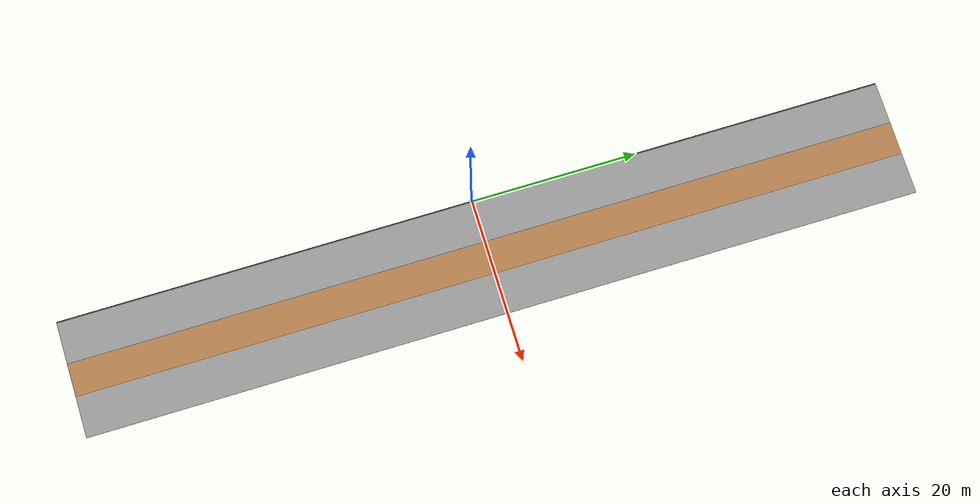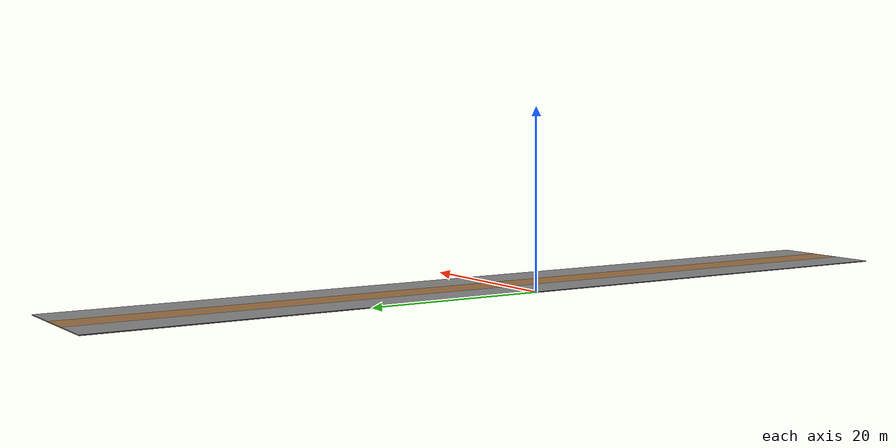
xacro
<?xml version="1.0" ?>
<robot xmlns:xacro="http://www.ros.org/wiki/xacro"
	name="bmw_assembly">

  <xacro:macro name="box_inertial" params="x y z mass *origin">
    <inertial>
      <mass value="${mass}" />
      <insert_block name="origin" />
      <inertia ixx="${0.0833333 * mass * (y*y + z*z)}" ixy="0.0" ixz="0.0"
          iyy="${0.0833333 * mass * (x*x + z*z)}" iyz="0.0"
          izz="${0.0833333 * mass * (x*x + y*y)}" />
    </inertial>
  </xacro:macro>

  <!-- variables for base link -->
  <xacro:property name="width0" value="0.1" />
  <xacro:property name="length0" value="100" />
  <xacro:property name="height0" value="0.1" />

  <!-- variables for platform1 -->
  <xacro:property name="width1" value="5" />
  <xacro:property name="length1" value="100" />
  <xacro:property name="height1" value="0.1" />

  <!-- variables for belt -->
  <xacro:property name="width_b" value="4" />
  <xacro:property name="length_b" value="100" />
  <xacro:property name="height_b" value="0.1" />

  <!-- variables for platform2 -->
  <xacro:property name="width2" value="5" />
  <xacro:property name="length2" value="100" />
  <xacro:property name="height2" value="0.1" />

  <!-- common variables -->
  <xacro:property name="mass_platform" value="5.0" />
  <xacro:property name="mass_belt" value="3.0" />

  <gazebo>
    <plugin name="gazebo_ros_control" filename="libgazebo_ros_control.so">
      <robotNamespace>bmw_assembly</robotNamespace>
    </plugin>
  </gazebo>

  <!-- world -->
  <!-- Used for fixing robot to Gazebo 'base_link' -->
  <link name="world" />

  <!-- base link -->
  <link name="base_link">
    <visual>
      <origin xyz="0 0 ${height0/2}" rpy="0 0 0"/>
      <geometry>
	<box size="${width0} ${length0} ${height0}"/>
      </geometry>
    </visual>

    <collision>
      <origin xyz="0 0 ${height0/2}" rpy="0 0 0"/>
      <geometry>
	<box size="${width0} ${length0} ${height0}"/>
      </geometry>
    </collision>

    <xacro:box_inertial x="${width0}" y="${length0}" z="${height0}" mass="${mass_platform}">
	<origin xyz="0 0 ${height0/2}" rpy="0 0 0"/>
    </xacro:box_inertial>
  </link>

  <gazebo reference="base_link">
	<material>Gazebo/Black</material>
  </gazebo>

  <link name="platform_1">
    <visual>
      <origin xyz="${width0+width1/2} 0 ${height1/2}" rpy="0 0 0"/>
      <geometry>
        <box size="${width1} ${length1} ${height1}"/>
      </geometry>
    </visual>

    <collision>
      <origin xyz="${width0+width1/2} 0 ${height1/2}" rpy="0 0 0"/>
      <geometry>
        <box size="${width1} ${length1} ${height1}"/>
      </geometry>
    </collision>

    <xacro:box_inertial x="${width1}" y="${length1}" z="${height1}" mass="${mass_platform}">
	<origin xyz="${width0+width1/2} 0 ${height1/2}" rpy="0 0 0"/>
    </xacro:box_inertial>
  </link>

  <gazebo reference="platform_1">
	<material>Gazebo/Grey</material>
  </gazebo>

  <link name="my_belt">
    <visual>
      <origin xyz="${width0+width1+width_b/2} 0 ${height_b/2}" rpy="0 0 0"/>
      <geometry>
        <box size="${width_b} ${length_b} ${height_b}" />
      </geometry>
    </visual>

    <collision>
      <origin xyz="${width0+width1+width_b/2} 0 ${height_b/2}" rpy="0 0 0"/>
      <geometry>
        <box size="${width_b} ${length_b} ${height_b}" />
      </geometry>
    </collision>

    <xacro:box_inertial x="${width_b}" y="${length_b}" z="${height_b}" mass="${mass_belt}">
	<origin xyz="${width0+width1+width_b/2} 0 ${height_b/2}" rpy="0 0 0"/>
    </xacro:box_inertial>
  </link>

  <gazebo reference="my_belt">
    <material>Gazebo/WoodFloor</material>
  </gazebo>

  <link name="platform_2">
    <visual>
      <origin xyz="${width0+width1+width_b+(width2/2)} 0 ${height2/2}" rpy="0 0 0"/>
      <geometry>
        <box size="${width2} ${length2} ${height2}" />
      </geometry>
    </visual>

    <collision>
      <origin xyz="${width0+width1+width_b+(width2/2)} 0 ${height2/2}" rpy="0 0 0"/>
      <geometry>
        <box size="${width2} ${length2} ${height2}" />
      </geometry>
    </collision>

    <xacro:box_inertial x="${width2}" y="${length2}" z="${height2}" mass="${mass_platform}">
	<origin xyz="${width0+width1+width_b+(width2/2)} 0 ${height2/2}" rpy="0 0 0"/>
    </xacro:box_inertial>
  </link>

  <gazebo reference="platform_2">
	<material>Gazebo/Grey</material>
  </gazebo>

  <joint name="world_joint"  type="fixed">
     <parent link="world"/>
     <child link="base_link"/>
  </joint>

  <joint name="base_to_platform1" type="fixed">
    <parent link="base_link"/>
    <child link="platform_1"/>
    <dynamics damping="0.7" friction="1.0"/>
    <origin xyz="0 0 0"/>
  </joint>

  <joint name="base_to_platform2" type="fixed">
    <parent link="base_link"/>
    <child link="platform_2"/>
    <dynamics damping="0.7" friction="1.0"/>
    <origin xyz="0 0 0"/>
  </joint>

  <joint name="base_to_belt" type="prismatic">
    <parent link="base_link"/>
    <child link="my_belt"/>
    <axis xyz="0 1 0"/>
    <dynamics damping="0.7" friction="1.0"/>
    <origin xyz="0 0 0"/>
    <limit lower="-1000000" upper="1000000" velocity="0.5" effort="1000"/>
  </joint>

  <transmission name="belt_trans">
    <type>transmission_interface/SimpleTransmission</type>
    <joint name="base_to_belt" />
    <actuator name="belt_motor">
      <hardwareInterface>VelocityJointInterface</hardwareInterface>
      <mechanicalReduction>1</mechanicalReduction>
    </actuator>
  </transmission>

</robot>
